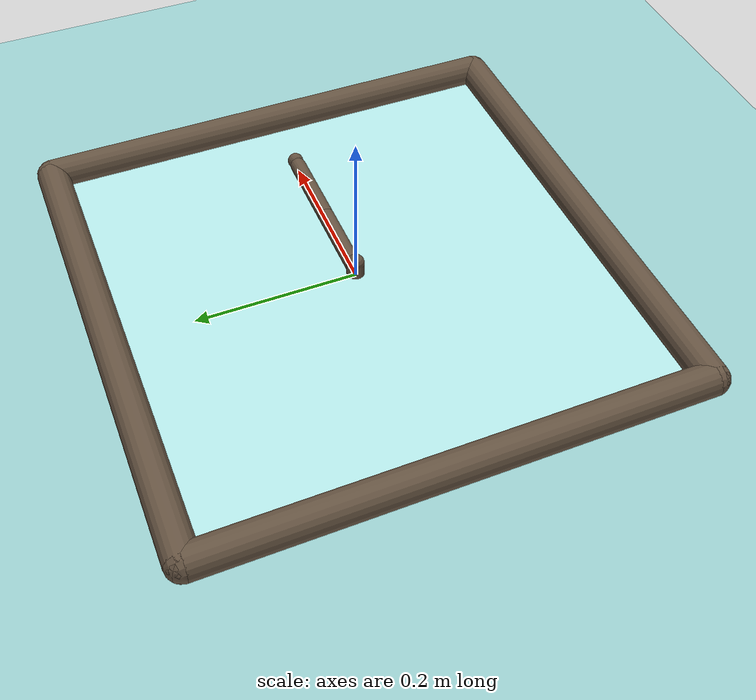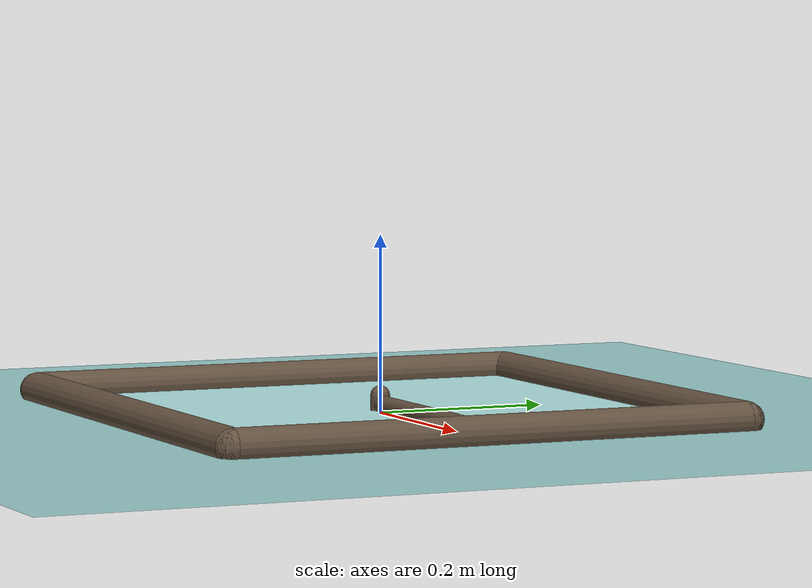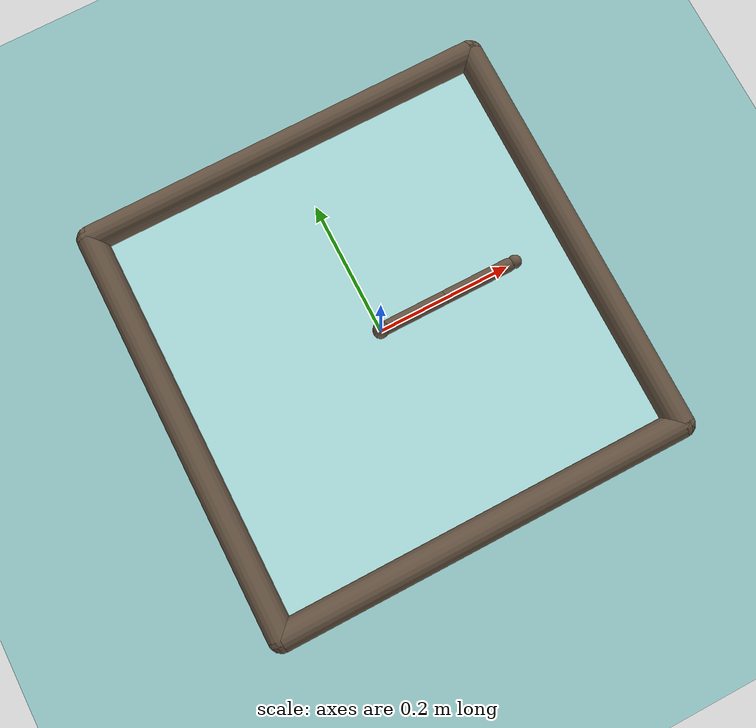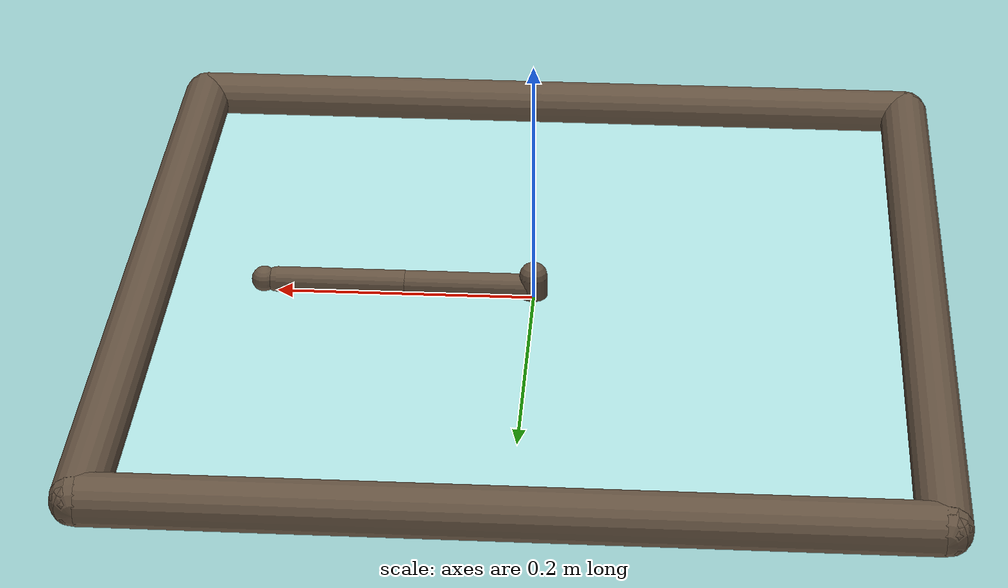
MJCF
<mujoco model="reacher">
  <compiler angle="radian" inertiafromgeom="true"/>
  <default>
    <joint armature="1" damping="1" limited="true"/>
    <geom conaffinity="0" contype="0" friction="1 0.1 0.1" rgba="0.4 0.33 0.26 1.0"/>
  </default>
  <!-- Removed RK4 integrator for brax. -->
  <option gravity="0 0 -9.81" timestep="0.01" ls_iterations="6"/>
  <visual>
    <headlight ambient="0.5 0.5 0.5" diffuse="0.9 0.9 0.9" specular="0.2 0.2 0.2"/>
    <map znear="0.01" zfar="30"/>
  </visual>
  <worldbody>
    <light diffuse=".5 .5 .5" pos="0 0 3" dir="0 0 -1"/>
    <!-- Arena -->
    <geom conaffinity="0" contype="0" name="ground" pos="0 0 0" size="1 1 10" type="plane" rgba="0.6 0.8 0.8 1"/>
    <geom name="inner_floor" type="box" size="0.3 0.3 0.001" pos="0 0 0.002" rgba="0.7 0.9 0.9 1" condim="3"/>
    <camera name="fixedfar" pos="0 -0.6 0.6" zaxis="0 -1 1" mode="fixed"/>
    <geom conaffinity="0" fromto="-.3 -.3 .01 .3 -.3 .01" name="sideS" size=".02" type="capsule"/>
    <geom conaffinity="0" fromto=" .3 -.3 .01 .3  .3 .01" name="sideE" size=".02" type="capsule"/>
    <geom conaffinity="0" fromto="-.3  .3 .01 .3  .3 .01" name="sideN" size=".02" type="capsule"/>
    <geom conaffinity="0" fromto="-.3 -.3 .01 -.3 .3 .01" name="sideW" size=".02" type="capsule"/>
    <!-- Arm -->
    <geom conaffinity="0" contype="0" fromto="0 0 0 0 0 0.02" name="root" size=".011" type="capsule"/>
    <body name="body0" pos="0 0 .01">
      <geom fromto="0 0 0 0.1 0 0" name="link0" size=".01" type="capsule"/>
      <joint axis="0 0 1" limited="false" name="joint0" pos="0 0 0" type="hinge"/>
      <body name="body1" pos="0.1 0 0">
        <!-- Added onboard cameras and agent site for safegoal rendering -->
        <camera name="vision" pos="0 0 0.05" xyaxes="0 -1 0 0 0 1" fovy="90"/>
        <camera name="vision_back" pos="0 0 0.05" xyaxes="0 1 0 0 0 1" fovy="90"/>
        <site name="agent" pos="0.05 0 0" size="0.01" type="sphere" rgba="1 0 0 0.1"/>
        <joint axis="0 0 1" limited="true" name="joint1" pos="0 0 0" range="-3.0 3.0" type="hinge"/>
        <geom fromto="0 0 0 0.1 0 0" name="link1" size=".01" type="capsule"/>
        <body name="fingertip" pos="0.11 0 0">
          <geom contype="0" name="fingertip" pos="0 0 0" size=".01" type="sphere"/>
        </body>
      </body>
    </body>
  </worldbody>
  <actuator>
    <motor ctrllimited="true" ctrlrange="-1.0 1.0" gear="200.0" joint="joint0"/>
    <motor ctrllimited="true" ctrlrange="-1.0 1.0" gear="200.0" joint="joint1"/>
  </actuator>
</mujoco>
